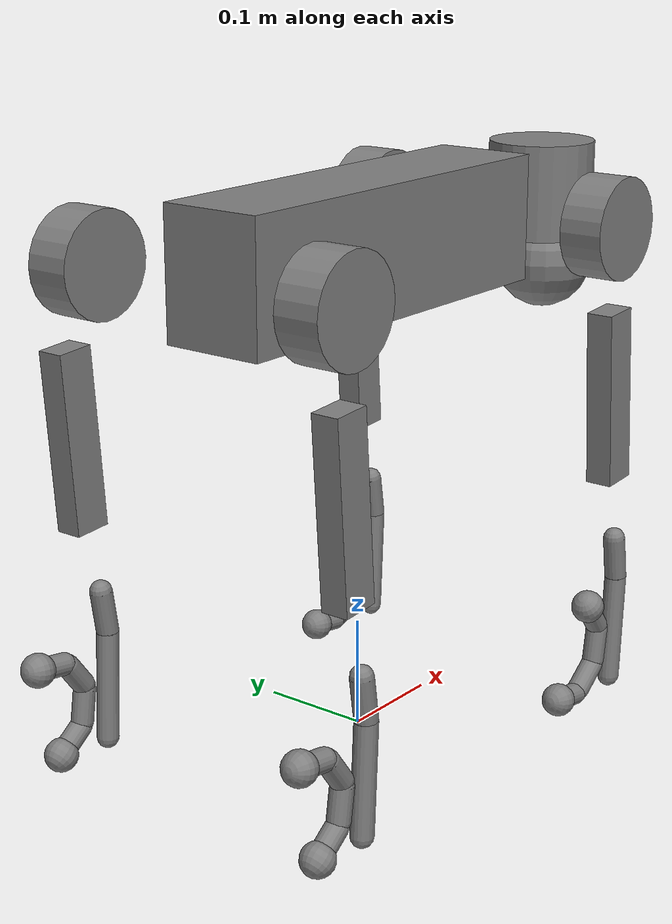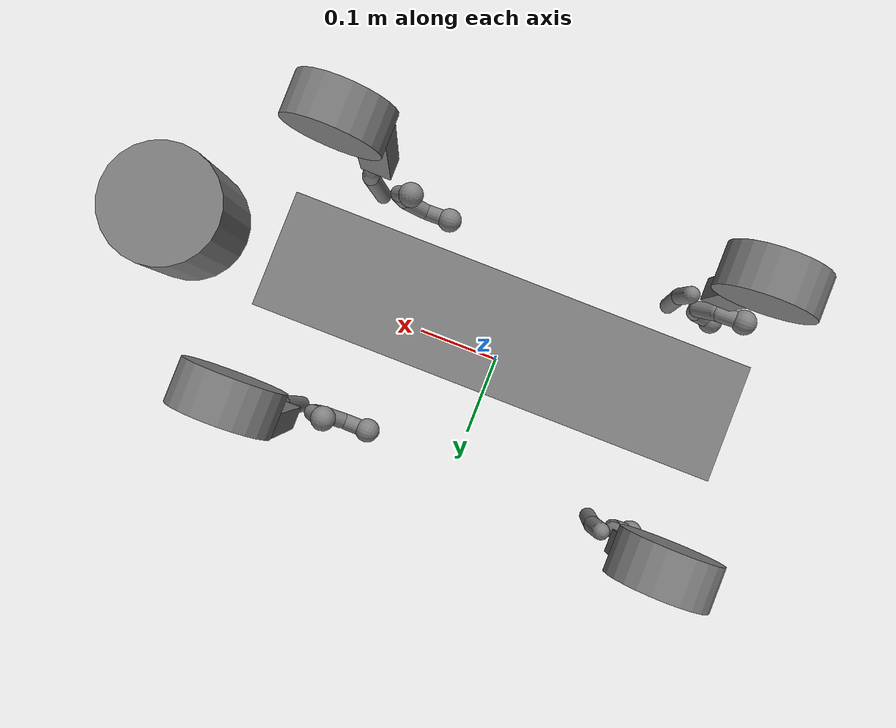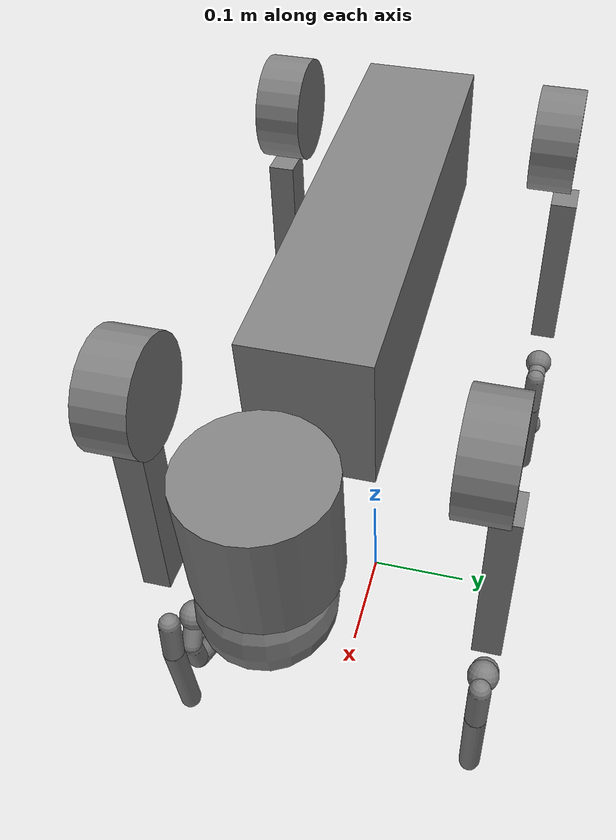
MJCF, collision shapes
<mujoco model="go2_leggedgym">
  <compiler angle="radian" meshdir="assets" autolimits="true" />

  <option cone="elliptic" impratio="100" />

  <default>
    <default class="go2">
      <geom friction="0.4" margin="0.001" condim="1"/>
      <joint axis="0 1 0" damping="0.1" armature="0.01" frictionloss="0.2"/>
      <motor ctrlrange="-23.7 23.7"/>
      <default class="abduction">
        <joint axis="1 0 0" range="-1.0472 1.0472"/>
      </default>
      <default class="hip">
        <default class="front_hip">
          <joint range="-1.5708 3.4907"/>
        </default>
        <default class="back_hip">
          <joint range="-0.5236 4.5379"/>
        </default>
      </default>
      <default class="knee">
        <joint range="-2.7227 -0.83776"/>
        <motor ctrlrange="-45.43 45.43"/>
      </default>
      <default class="visual">
        <geom type="mesh" contype="0" conaffinity="0" group="2"/>
      </default>
      <default class="collision">
        <geom group="3"/>
        <default class="foot">
          <geom size="0.022" pos="-0.002 0 -0.213" priority="1" condim="6"
            friction="0.4 0.02 0.01"/>
        </default>
      </default>
    </default>
  </default>

  <asset>
    <material name="metal" rgba=".9 .95 .95 1" />
    <material name="black" rgba="0 0 0 1" />
    <material name="white" rgba="1 1 1 1" />
    <material name="gray" rgba="0.671705 0.692426 0.774270 1" />

    <mesh file="base_0.obj" />
    <mesh file="base_1.obj" />
    <mesh file="base_2.obj" />
    <mesh file="base_3.obj" />
    <mesh file="base_4.obj" />
    <mesh file="hip_0.obj" />
    <mesh file="hip_1.obj" />
    <mesh file="thigh_0.obj" />
    <mesh file="thigh_1.obj" />
    <mesh file="thigh_mirror_0.obj" />
    <mesh file="thigh_mirror_1.obj" />
    <mesh file="calf_0.obj" />
    <mesh file="calf_1.obj" />
    <mesh file="calf_mirror_0.obj" />
    <mesh file="calf_mirror_1.obj" />
    <mesh file="foot.obj" />
  </asset>

  <worldbody>
    <body name="base" pos="0 0 0.445" childclass="go2">
      <inertial pos="0.021112 0 -0.005366" quat="-0.000543471 0.713435 -0.00173769 0.700719"
        mass="6.921"
        diaginertia="0.107027 0.0980771 0.0244531" />
      <freejoint />
      <geom mesh="base_0" material="black" class="visual" />
      <geom mesh="base_1" material="black" class="visual" />
      <geom mesh="base_2" material="black" class="visual" />
      <geom mesh="base_3" material="white" class="visual" />
      <geom mesh="base_4" material="gray" class="visual" />
      <geom size="0.1881 0.04675 0.057" type="box" class="collision" />
      <site name="imu" pos="-0.02557 0 0.04232" />
      <body name="Head_upper" pos="0.285 0 0.01">
        <inertial pos="0 0 0" mass="0.001" diaginertia="9.6e-06 9.6e-06 9.6e-06" />
        <geom size="0.05 0.045" type="cylinder" class="collision" />
        <body name="Head_lower" pos="0.008 0 -0.07">
          <inertial pos="0 0 0" mass="0.001" diaginertia="9.6e-06 9.6e-06 9.6e-06" />
          <geom size="0.047" class="collision" />
        </body>
      </body>
      <body name="imu_link" pos="-0.02557 0 0.04232" />
      <body name="FL_hip_rotor" pos="0.11215 0.04675 0">
        <inertial pos="0 0 0" mass="0.089" diaginertia="0.000111842 0.000059647 0.000059647" />
      </body>
      <body name="FR_hip_rotor" pos="0.11215 -0.04675 0">
        <inertial pos="0 0 0" mass="0.089" diaginertia="0.000111842 0.000059647 0.000059647" />
      </body>
      <body name="RL_hip_rotor" pos="-0.11215 0.04675 0">
        <inertial pos="0 0 0" mass="0.089" diaginertia="0.000111842 0.000059647 0.000059647" />
      </body>
      <body name="RR_hip_rotor" pos="-0.11215 -0.04675 0">
        <inertial pos="0 0 0" mass="0.089" diaginertia="0.000111842 0.000059647 0.000059647" />
      </body>
      <body name="FL_hip" pos="0.1934 0.0465 0">
        <inertial pos="-0.0054 0.00194 -0.000105" quat="0.497014 0.499245 0.505462 0.498237"
          mass="0.678"
          diaginertia="0.00088403 0.000596003 0.000479967" />
        <joint name="FL_hip_joint" class="abduction" />
        <geom mesh="hip_0" material="metal" class="visual" />
        <geom mesh="hip_1" material="gray" class="visual" />
        <geom size="0.046 0.02" pos="0 0.08 0" quat="1 1 0 0" type="cylinder" class="collision" />
        <body name="FL_thigh" pos="0 0.0955 0">
          <inertial pos="-0.00374 -0.0223 -0.0327" quat="0.829533 0.0847635 -0.0200632 0.551623"
            mass="1.152"
            diaginertia="0.00594973 0.00584149 0.000878787" />
          <joint name="FL_thigh_joint" class="front_hip" />
          <geom mesh="thigh_0" material="metal" class="visual" />
          <geom mesh="thigh_1" material="gray" class="visual" />
          <geom size="0.08 0.01225 0.017" pos="-0.01 0 -0.15" quat="0.731689 0 0.681639 0"
            type="box" class="collision" />
          <body name="FL_thigh_rotor" pos="0 -0.00015 0">
            <inertial pos="0 0 0" mass="0.089" diaginertia="0.000059647 0.000111842 0.000059647" />
          </body>
          <body name="FL_calf_rotor" pos="0 -0.03235 0">
            <inertial pos="0 0 0" mass="0.089" diaginertia="0.000059647 0.000111842 0.000059647" />
          </body>
          <body name="FL_calf" pos="0 0 -0.213">
            <inertial pos="0.00548 -0.000975 -0.115" mass="0.154"
              diaginertia="0.00108 0.0011 3.29e-05" />
            <joint name="FL_calf_joint" class="knee" />
            <geom mesh="calf_0" material="gray" class="visual" />
            <geom mesh="calf_1" material="black" class="visual" />
            <geom size="0.01 0.02" pos="0.016 0 -0.1" quat="0.997189 0 -0.07493 0"
              type="capsule" class="collision" />
            <body name="FL_calflower" pos="0.018 0 -0.14" quat="0.999688 0 0.0249974 0">
              <geom size="0.01 0.05" pos="0 0 -0.03" type="capsule" class="collision" density="0" />
              <body name="FL_effector" pos="-0.03 0 -0.04" quat="0.99875 0 0.0499792 0">
                <inertial pos="0 0 0" mass="0.0116867" diaginertia="1.16867e-06 1.16867e-06 5.84336e-07" />
                <geom size="0.01 0.015" type="capsule" class="collision" />
                <geom size="0.01 0.015" type="capsule" rgba="0.8 0.8 0.8 1" group="2" contype="0" conaffinity="0" />
                <body name="FL_end" pos="-0.012 0 -0.03" quat="0.923956 0 0.382499 0">
                  <inertial pos="0 0 0" mass="0.0116867" diaginertia="1.16867e-06 1.16867e-06 5.84336e-07" />
                  <geom size="0.01 0.015" type="capsule" class="collision" />
                  <geom size="0.01 0.015" type="capsule" rgba="0.8 0.8 0.8 1" group="2" contype="0" conaffinity="0" />
                  <body name="FL_end1" pos="-0.012 0 -0.03" quat="0.923956 0 0.382499 0">
                    <inertial pos="0 0 0" mass="0.0116867" diaginertia="1.16867e-06 1.16867e-06 5.84336e-07" />
                    <geom size="0.01 0.015" type="capsule" class="collision" />
                    <geom size="0.01 0.015" type="capsule" rgba="0.8 0.8 0.8 1" group="2" contype="0" conaffinity="0" />
                    <body name="FL_foot" pos="0 0 -0.015">
                      <inertial pos="0 0 0" mass="0.0162577" diaginertia="1.4632e-06 1.4632e-06 1.4632e-06" />
                      <geom name="FL" size="0.015" priority="1" condim="6" friction="0.4 0.02 0.01" class="collision" />
                      <geom size="0.015" rgba="0.8 0.8 0.8 1" group="2" contype="0" conaffinity="0" />
                    </body>
                  </body>
                </body>
                <body name="FL_end2" pos="-0.012 0 0.03" quat="0.923956 0 -0.382499 0">
                  <inertial pos="0 0 0" mass="0.0116867" diaginertia="1.16867e-06 1.16867e-06 5.84336e-07" />
                  <geom size="0.01 0.015" type="capsule" class="collision" />
                  <geom size="0.01 0.015" type="capsule" rgba="0.8 0.8 0.8 1" group="2" contype="0" conaffinity="0" />
                  <body name="FL_foot1" pos="0 0 0.015">
                    <inertial pos="0 0 0" mass="0.0162577" diaginertia="1.4632e-06 1.4632e-06 1.4632e-06" />
                    <geom size="0.015" class="collision" />
                    <geom size="0.015" rgba="0.8 0.8 0.8 1" group="2" contype="0" conaffinity="0" />
                  </body>
                </body>
              </body>
            </body>
          </body>
        </body>
      </body>
      <body name="FR_hip" pos="0.1934 -0.0465 0">
        <inertial pos="-0.0054 -0.00194 -0.000105" quat="0.498237 0.505462 0.499245 0.497014"
          mass="0.678"
          diaginertia="0.00088403 0.000596003 0.000479967" />
        <joint name="FR_hip_joint" class="abduction" />
        <geom mesh="hip_0" material="metal" class="visual" quat="4.63268e-05 1 0 0" />
        <geom mesh="hip_1" material="gray" class="visual" quat="4.63268e-05 1 0 0" />
        <geom size="0.046 0.02" pos="0 -0.08 0" quat="0.707107 0.707107 0 0" type="cylinder"
          class="collision" />
        <body name="FR_thigh" pos="0 -0.0955 0">
          <inertial pos="-0.00374 0.0223 -0.0327" quat="0.551623 -0.0200632 0.0847635 0.829533"
            mass="1.152"
            diaginertia="0.00594973 0.00584149 0.000878787" />
          <joint name="FR_thigh_joint" class="front_hip" />
          <geom mesh="thigh_mirror_0" material="metal" class="visual" />
          <geom mesh="thigh_mirror_1" material="gray" class="visual" />
          <geom size="0.08 0.01225 0.017" pos="-0.01 0 -0.15" quat="0.731689 0 0.681639 0"
            type="box" class="collision" />
          <body name="FR_thigh_rotor" pos="0 0.00015 0">
            <inertial pos="0 0 0" mass="0.089" diaginertia="0.000059647 0.000111842 0.000059647" />
          </body>
          <body name="FR_calf_rotor" pos="0 0.03235 0">
            <inertial pos="0 0 0" mass="0.089" diaginertia="0.000059647 0.000111842 0.000059647" />
          </body>
          <body name="FR_calf" pos="0 0 -0.213">
            <inertial pos="0.00548 0.000975 -0.115" mass="0.154"
              diaginertia="0.00108 0.0011 3.29e-05" />
            <joint name="FR_calf_joint" class="knee" />
            <geom mesh="calf_mirror_0" material="gray" class="visual" />
            <geom mesh="calf_mirror_1" material="black" class="visual" />
            <geom size="0.01 0.02" pos="0.016 0 -0.1" quat="0.997189 0 -0.07493 0"
              type="capsule" class="collision" />
            <body name="FR_calflower" pos="0.018 0 -0.14" quat="0.999688 0 0.0249974 0">
              <geom size="0.01 0.05" pos="0 0 -0.03" type="capsule" class="collision" density="0" />
              <body name="FR_effector" pos="-0.03 0 -0.04" quat="0.99875 0 0.0499792 0">
                <inertial pos="0 0 0" mass="0.0116867" diaginertia="1.16867e-06 1.16867e-06 5.84336e-07" />
                <geom size="0.01 0.015" type="capsule" class="collision" />
                <geom size="0.01 0.015" type="capsule" rgba="0.8 0.8 0.8 1" group="2" contype="0" conaffinity="0" />
                <body name="FR_end" pos="-0.012 0 -0.03" quat="0.923956 0 0.382499 0">
                  <inertial pos="0 0 0" mass="0.0116867" diaginertia="1.16867e-06 1.16867e-06 5.84336e-07" />
                  <geom size="0.01 0.015" type="capsule" class="collision" />
                  <geom size="0.01 0.015" type="capsule" rgba="0.8 0.8 0.8 1" group="2" contype="0" conaffinity="0" />
                  <body name="FR_end1" pos="-0.012 0 -0.03" quat="0.923956 0 0.382499 0">
                    <inertial pos="0 0 0" mass="0.0116867" diaginertia="1.16867e-06 1.16867e-06 5.84336e-07" />
                    <geom size="0.01 0.015" type="capsule" class="collision" />
                    <geom size="0.01 0.015" type="capsule" rgba="0.8 0.8 0.8 1" group="2" contype="0" conaffinity="0" />
                    <body name="FR_foot" pos="0 0 -0.015">
                      <inertial pos="0 0 0" mass="0.0162577" diaginertia="1.4632e-06 1.4632e-06 1.4632e-06" />
                      <geom name="FR" size="0.015" priority="1" condim="6" friction="0.4 0.02 0.01" class="collision" />
                      <geom size="0.015" rgba="0.8 0.8 0.8 1" group="2" contype="0" conaffinity="0" />
                    </body>
                  </body>
                </body>
                <body name="FR_end2" pos="-0.012 0 0.03" quat="0.923956 0 -0.382499 0">
                  <inertial pos="0 0 0" mass="0.0116867" diaginertia="1.16867e-06 1.16867e-06 5.84336e-07" />
                  <geom size="0.01 0.015" type="capsule" class="collision" />
                  <geom size="0.01 0.015" type="capsule" rgba="0.8 0.8 0.8 1" group="2" contype="0" conaffinity="0" />
                  <body name="FR_foot1" pos="0 0 0.015">
                    <inertial pos="0 0 0" mass="0.0162577" diaginertia="1.4632e-06 1.4632e-06 1.4632e-06" />
                    <geom size="0.015" class="collision" />
                    <geom size="0.015" rgba="0.8 0.8 0.8 1" group="2" contype="0" conaffinity="0" />
                  </body>
                </body>
              </body>
            </body>
          </body>
        </body>
      </body>
      <body name="RL_hip" pos="-0.1934 0.0465 0">
        <inertial pos="0.0054 0.00194 -0.000105" quat="0.505462 0.498237 0.497014 0.499245"
          mass="0.678"
          diaginertia="0.00088403 0.000596003 0.000479967" />
        <joint name="RL_hip_joint" class="abduction" />
        <geom mesh="hip_0" material="metal" class="visual" quat="4.63268e-05 0 1 0" />
        <geom mesh="hip_1" material="gray" class="visual" quat="4.63268e-05 0 1 0" />
        <geom size="0.046 0.02" pos="0 0.08 0" quat="0.707107 0.707107 0 0" type="cylinder"
          class="collision" />
        <body name="RL_thigh" pos="0 0.0955 0">
          <inertial pos="-0.00374 -0.0223 -0.0327" quat="0.829533 0.0847635 -0.0200632 0.551623"
            mass="1.152"
            diaginertia="0.00594973 0.00584149 0.000878787" />
          <joint name="RL_thigh_joint" class="back_hip" />
          <geom mesh="thigh_0" material="metal" class="visual" />
          <geom mesh="thigh_1" material="gray" class="visual" />
          <geom size="0.08 0.01225 0.017" pos="-0.01 0 -0.15" quat="0.731689 0 0.681639 0"
            type="box" class="collision" />
          <body name="RL_thigh_rotor" pos="0 -0.00015 0">
            <inertial pos="0 0 0" mass="0.089" diaginertia="0.000059647 0.000111842 0.000059647" />
          </body>
          <body name="RL_calf_rotor" pos="0 -0.03235 0">
            <inertial pos="0 0 0" mass="0.089" diaginertia="0.000059647 0.000111842 0.000059647" />
          </body>
          <body name="RL_calf" pos="0 0 -0.213">
            <inertial pos="0.00548 -0.000975 -0.115" mass="0.154"
              diaginertia="0.00108 0.0011 3.29e-05" />
            <joint name="RL_calf_joint" class="knee" />
            <geom mesh="calf_0" material="gray" class="visual" />
            <geom mesh="calf_1" material="black" class="visual" />
            <geom size="0.01 0.02" pos="0.016 0 -0.1" quat="0.997189 0 -0.07493 0"
              type="capsule" class="collision" />
            <body name="RL_calflower" pos="0.018 0 -0.14" quat="0.999688 0 0.0249974 0">
              <geom size="0.01 0.05" pos="0 0 -0.03" type="capsule" class="collision" density="0" />
              <body name="RL_effector" pos="-0.03 0 -0.04" quat="0.99875 0 0.0499792 0">
                <inertial pos="0 0 0" mass="0.0116867" diaginertia="1.16867e-06 1.16867e-06 5.84336e-07" />
                <geom size="0.01 0.015" type="capsule" class="collision" />
                <geom size="0.01 0.015" type="capsule" rgba="0.8 0.8 0.8 1" group="2" contype="0" conaffinity="0" />
                <body name="RL_end" pos="-0.012 0 -0.03" quat="0.923956 0 0.382499 0">
                  <inertial pos="0 0 0" mass="0.0116867" diaginertia="1.16867e-06 1.16867e-06 5.84336e-07" />
                  <geom size="0.01 0.015" type="capsule" class="collision" />
                  <geom size="0.01 0.015" type="capsule" rgba="0.8 0.8 0.8 1" group="2" contype="0" conaffinity="0" />
                  <body name="RL_foot" pos="0 0 -0.015">
                    <inertial pos="0 0 0" mass="0.0162577" diaginertia="1.4632e-06 1.4632e-06 1.4632e-06" />
                    <geom name="RL" size="0.015" priority="1" condim="6" friction="0.4 0.02 0.01" class="collision" />
                    <geom size="0.015" rgba="0.8 0.8 0.8 1" group="2" contype="0" conaffinity="0" />
                  </body>
                </body>
                <body name="RL_end2" pos="-0.012 0 0.03" quat="0.923956 0 -0.382499 0">
                  <inertial pos="0 0 0" mass="0.0116867" diaginertia="1.16867e-06 1.16867e-06 5.84336e-07" />
                  <geom size="0.01 0.015" type="capsule" class="collision" />
                  <geom size="0.01 0.015" type="capsule" rgba="0.8 0.8 0.8 1" group="2" contype="0" conaffinity="0" />
                  <body name="RL_end3" pos="-0.012 0 0.03" quat="0.923956 0 -0.382499 0">
                    <inertial pos="0 0 0" mass="0.0116867" diaginertia="1.16867e-06 1.16867e-06 5.84336e-07" />
                    <geom size="0.01 0.015" type="capsule" class="collision" />
                    <geom size="0.01 0.015" type="capsule" rgba="0.8 0.8 0.8 1" group="2" contype="0" conaffinity="0" />
                    <body name="RL_foot1" pos="0 0 0.015">
                      <inertial pos="0 0 0" mass="0.0162577" diaginertia="1.4632e-06 1.4632e-06 1.4632e-06" />
                      <geom size="0.015" class="collision" />
                      <geom size="0.015" rgba="0.8 0.8 0.8 1" group="2" contype="0" conaffinity="0" />
                    </body>
                  </body>
                </body>
              </body>
            </body>
          </body>
        </body>
      </body>
      <body name="RR_hip" pos="-0.1934 -0.0465 0">
        <inertial pos="0.0054 -0.00194 -0.000105" quat="0.499245 0.497014 0.498237 0.505462"
          mass="0.678"
          diaginertia="0.00088403 0.000596003 0.000479967" />
        <joint name="RR_hip_joint" class="abduction" />
        <geom mesh="hip_0" material="metal" class="visual"
          quat="2.14617e-09 4.63268e-05 4.63268e-05 -1" />
        <geom mesh="hip_1" material="gray" class="visual"
          quat="2.14617e-09 4.63268e-05 4.63268e-05 -1" />
        <geom size="0.046 0.02" pos="0 -0.08 0" quat="0.707107 0.707107 0 0" type="cylinder"
          class="collision" />
        <body name="RR_thigh" pos="0 -0.0955 0">
          <inertial pos="-0.00374 0.0223 -0.0327" quat="0.551623 -0.0200632 0.0847635 0.829533"
            mass="1.152"
            diaginertia="0.00594973 0.00584149 0.000878787" />
          <joint name="RR_thigh_joint" class="back_hip" />
          <geom mesh="thigh_mirror_0" material="metal" class="visual" />
          <geom mesh="thigh_mirror_1" material="gray" class="visual" />
          <geom size="0.08 0.01225 0.017" pos="-0.01 0 -0.15" quat="0.731689 0 0.681639 0"
            type="box" class="collision" />
          <body name="RR_thigh_rotor" pos="0 0.00015 0">
            <inertial pos="0 0 0" mass="0.089" diaginertia="0.000059647 0.000111842 0.000059647" />
          </body>
          <body name="RR_calf_rotor" pos="0 0.03235 0">
            <inertial pos="0 0 0" mass="0.089" diaginertia="0.000059647 0.000111842 0.000059647" />
          </body>
          <body name="RR_calf" pos="0 0 -0.213">
            <inertial pos="0.00548 0.000975 -0.115" mass="0.154"
              diaginertia="0.00108 0.0011 3.29e-05" />
            <joint name="RR_calf_joint" class="knee" />
            <geom mesh="calf_mirror_0" material="gray" class="visual" />
            <geom mesh="calf_mirror_1" material="black" class="visual" />
            <geom size="0.01 0.02" pos="0.016 0 -0.1" quat="0.997189 0 -0.07493 0"
              type="capsule" class="collision" />
            <body name="RR_calflower" pos="0.018 0 -0.14" quat="0.999688 0 0.0249974 0">
              <geom size="0.01 0.05" pos="0 0 -0.03" type="capsule" class="collision" density="0" />
              <body name="RR_effector" pos="-0.03 0 -0.04" quat="0.99875 0 0.0499792 0">
                <inertial pos="0 0 0" mass="0.0116867" diaginertia="1.16867e-06 1.16867e-06 5.84336e-07" />
                <geom size="0.01 0.015" type="capsule" class="collision" />
                <geom size="0.01 0.015" type="capsule" rgba="0.8 0.8 0.8 1" group="2" contype="0" conaffinity="0" />
                <body name="RR_end" pos="-0.012 0 -0.03" quat="0.923956 0 0.382499 0">
                  <inertial pos="0 0 0" mass="0.0116867" diaginertia="1.16867e-06 1.16867e-06 5.84336e-07" />
                  <geom size="0.01 0.015" type="capsule" class="collision" />
                  <geom size="0.01 0.015" type="capsule" rgba="0.8 0.8 0.8 1" group="2" contype="0" conaffinity="0" />
                  <body name="RR_foot" pos="0 0 -0.015">
                    <inertial pos="0 0 0" mass="0.0162577" diaginertia="1.4632e-06 1.4632e-06 1.4632e-06" />
                    <geom name="RR" size="0.015" priority="1" condim="6" friction="0.4 0.02 0.01" class="collision" />
                    <geom size="0.015" rgba="0.8 0.8 0.8 1" group="2" contype="0" conaffinity="0" />
                  </body>
                </body>
                <body name="RR_end2" pos="-0.012 0 0.03" quat="0.923956 0 -0.382499 0">
                  <inertial pos="0 0 0" mass="0.0116867" diaginertia="1.16867e-06 1.16867e-06 5.84336e-07" />
                  <geom size="0.01 0.015" type="capsule" class="collision" />
                  <geom size="0.01 0.015" type="capsule" rgba="0.8 0.8 0.8 1" group="2" contype="0" conaffinity="0" />
                  <body name="RR_end3" pos="-0.012 0 0.03" quat="0.923956 0 -0.382499 0">
                    <inertial pos="0 0 0" mass="0.0116867" diaginertia="1.16867e-06 1.16867e-06 5.84336e-07" />
                    <geom size="0.01 0.015" type="capsule" class="collision" />
                    <geom size="0.01 0.015" type="capsule" rgba="0.8 0.8 0.8 1" group="2" contype="0" conaffinity="0" />
                    <body name="RR_foot1" pos="0 0 0.015">
                      <inertial pos="0 0 0" mass="0.0162577" diaginertia="1.4632e-06 1.4632e-06 1.4632e-06" />
                      <geom size="0.015" class="collision" />
                      <geom size="0.015" rgba="0.8 0.8 0.8 1" group="2" contype="0" conaffinity="0" />
                    </body>
                  </body>
                </body>
              </body>
            </body>
          </body>
        </body>
      </body>
    </body>
  </worldbody>

  <actuator>
    <motor class="abduction" name="FR_hip" joint="FR_hip_joint" />
    <motor class="hip" name="FR_thigh" joint="FR_thigh_joint" />
    <motor class="knee" name="FR_calf" joint="FR_calf_joint" />
    <motor class="abduction" name="FL_hip" joint="FL_hip_joint" />
    <motor class="hip" name="FL_thigh" joint="FL_thigh_joint" />
    <motor class="knee" name="FL_calf" joint="FL_calf_joint" />
    <motor class="abduction" name="RR_hip" joint="RR_hip_joint" />
    <motor class="hip" name="RR_thigh" joint="RR_thigh_joint" />
    <motor class="knee" name="RR_calf" joint="RR_calf_joint" />
    <motor class="abduction" name="RL_hip" joint="RL_hip_joint" />
    <motor class="hip" name="RL_thigh" joint="RL_thigh_joint" />
    <motor class="knee" name="RL_calf" joint="RL_calf_joint" />
  </actuator>

  <sensor>
    <jointpos name="FR_hip_pos" joint="FR_hip_joint" />
    <jointpos name="FR_thigh_pos" joint="FR_thigh_joint" />
    <jointpos name="FR_calf_pos" joint="FR_calf_joint" />
    <jointpos name="FL_hip_pos" joint="FL_hip_joint" />
    <jointpos name="FL_thigh_pos" joint="FL_thigh_joint" />
    <jointpos name="FL_calf_pos" joint="FL_calf_joint" />
    <jointpos name="RR_hip_pos" joint="RR_hip_joint" />
    <jointpos name="RR_thigh_pos" joint="RR_thigh_joint" />
    <jointpos name="RR_calf_pos" joint="RR_calf_joint" />
    <jointpos name="RL_hip_pos" joint="RL_hip_joint" />
    <jointpos name="RL_thigh_pos" joint="RL_thigh_joint" />
    <jointpos name="RL_calf_pos" joint="RL_calf_joint" />

    <jointvel name="FR_hip_vel" joint="FR_hip_joint" />
    <jointvel name="FR_thigh_vel" joint="FR_thigh_joint" />
    <jointvel name="FR_calf_vel" joint="FR_calf_joint" />
    <jointvel name="FL_hip_vel" joint="FL_hip_joint" />
    <jointvel name="FL_thigh_vel" joint="FL_thigh_joint" />
    <jointvel name="FL_calf_vel" joint="FL_calf_joint" />
    <jointvel name="RR_hip_vel" joint="RR_hip_joint" />
    <jointvel name="RR_thigh_vel" joint="RR_thigh_joint" />
    <jointvel name="RR_calf_vel" joint="RR_calf_joint" />
    <jointvel name="RL_hip_vel" joint="RL_hip_joint" />
    <jointvel name="RL_thigh_vel" joint="RL_thigh_joint" />
    <jointvel name="RL_calf_vel" joint="RL_calf_joint" />

    <jointactuatorfrc name="FR_hip_torque" joint="FR_hip_joint" noise="0.01" />
    <jointactuatorfrc name="FR_thigh_torque" joint="FR_thigh_joint" noise="0.01" />
    <jointactuatorfrc name="FR_calf_torque" joint="FR_calf_joint" noise="0.01" />
    <jointactuatorfrc name="FL_hip_torque" joint="FL_hip_joint" noise="0.01" />
    <jointactuatorfrc name="FL_thigh_torque" joint="FL_thigh_joint" noise="0.01" />
    <jointactuatorfrc name="FL_calf_torque" joint="FL_calf_joint" noise="0.01" />
    <jointactuatorfrc name="RR_hip_torque" joint="RR_hip_joint" noise="0.01" />
    <jointactuatorfrc name="RR_thigh_torque" joint="RR_thigh_joint" noise="0.01" />
    <jointactuatorfrc name="RR_calf_torque" joint="RR_calf_joint" noise="0.01" />
    <jointactuatorfrc name="RL_hip_torque" joint="RL_hip_joint" noise="0.01" />
    <jointactuatorfrc name="RL_thigh_torque" joint="RL_thigh_joint" noise="0.01" />
    <jointactuatorfrc name="RL_calf_torque" joint="RL_calf_joint" noise="0.01" />

    <framequat name="imu_quat" objtype="site" objname="imu" />
    <gyro name="imu_gyro" site="imu" />
    <accelerometer name="imu_acc" site="imu" />

    <framepos name="frame_pos" objtype="site" objname="imu" />
    <framelinvel name="frame_vel" objtype="site" objname="imu" />
  </sensor>

  <keyframe>
    <key name="home" qpos="0 0 0.27 1 0 0 0 0 0.9 -1.8 0 0.9 -1.8 0 0.9 -1.8 0 0.9 -1.8"
      ctrl="0 0.9 -1.8 0 0.9 -1.8 0 0.9 -1.8 0 0.9 -1.8" />
  </keyframe>
</mujoco>
